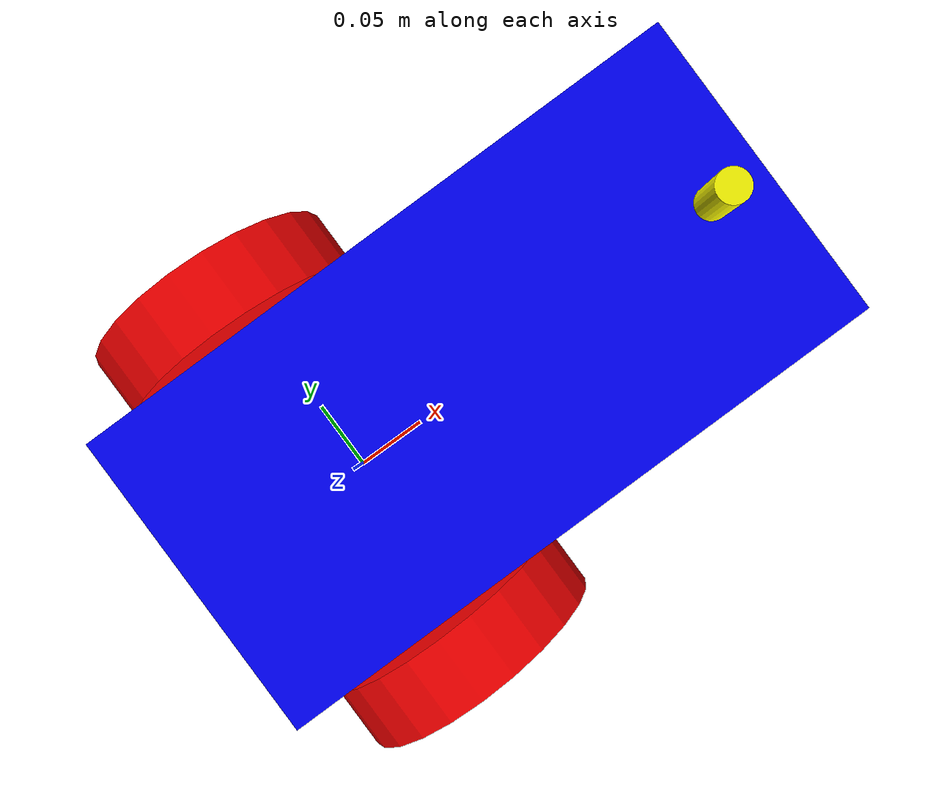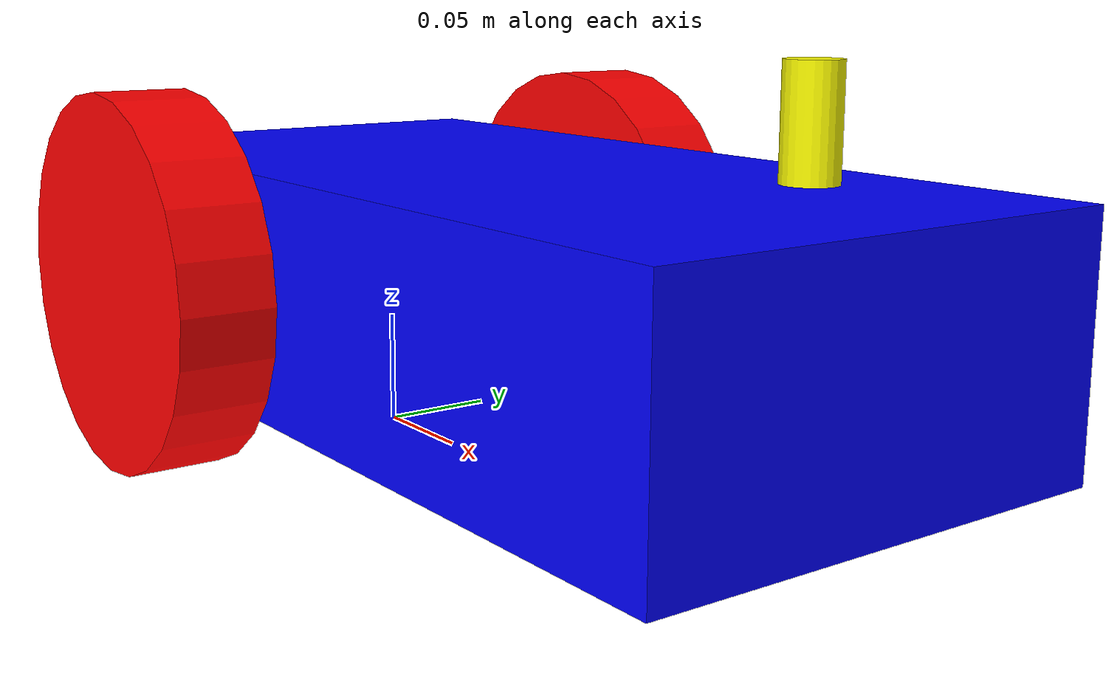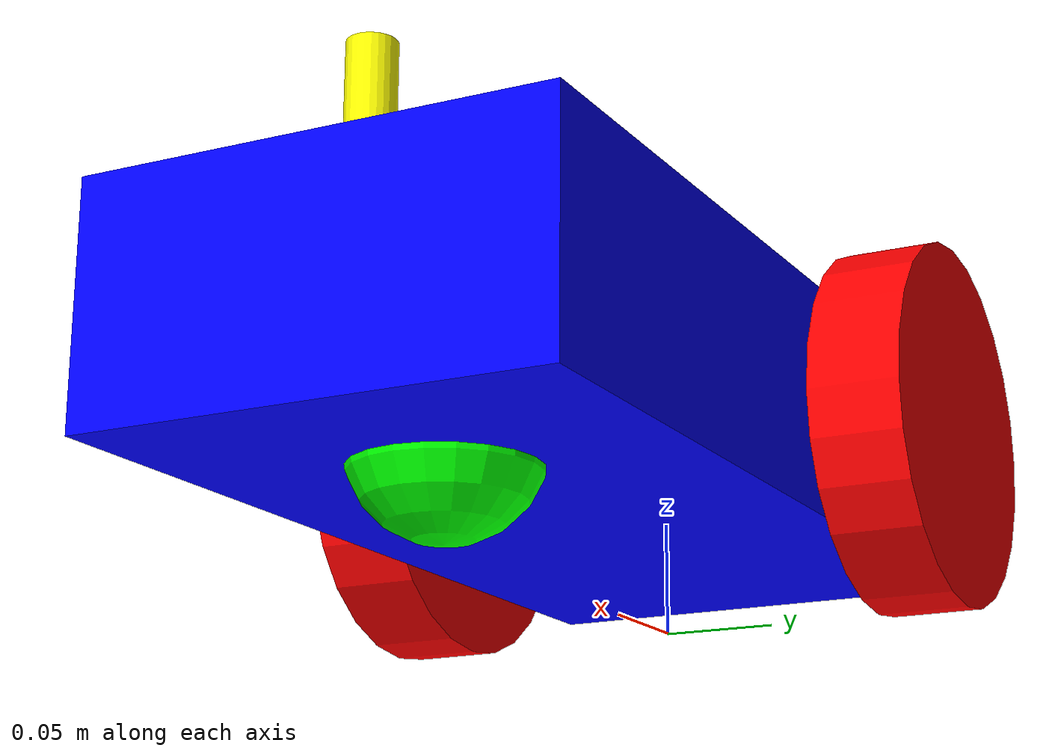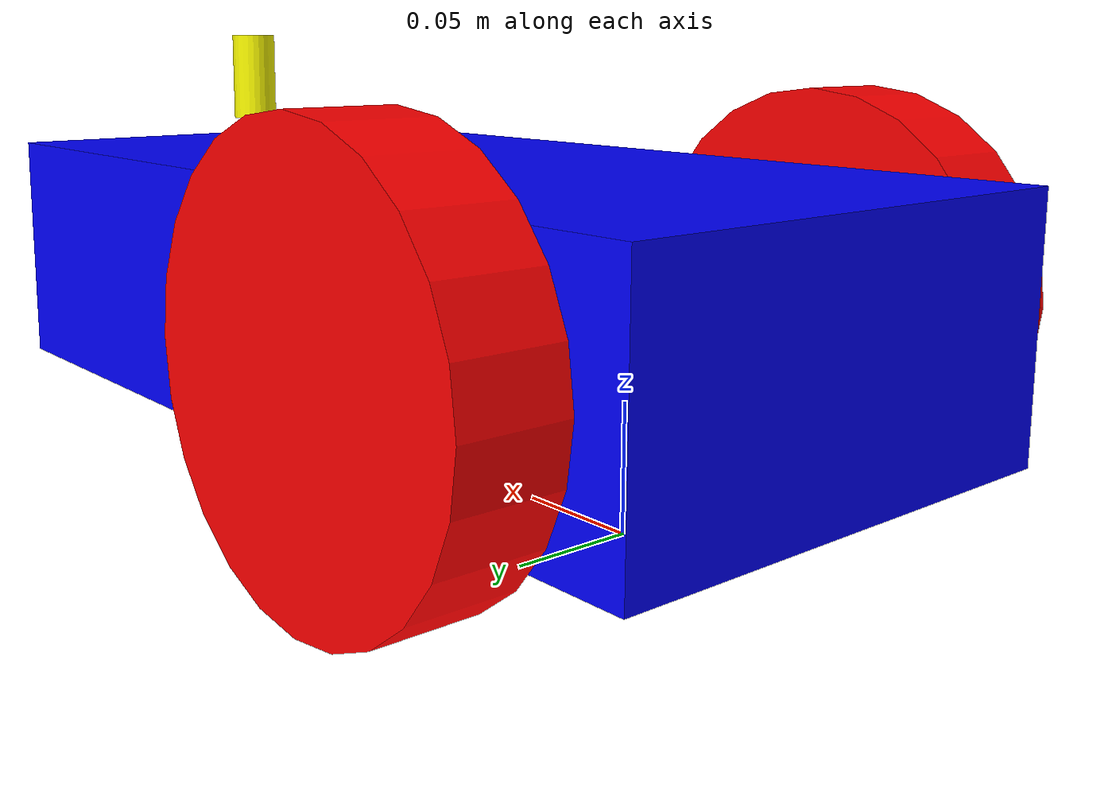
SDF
<?xml version="1.0" ?>
<sdf version="1.10">
   <model name='vehicle_blue' canonical_link='base_link'>
       <link name='base_link'>
           <pose relative_to='__model__'>0.1 0 0.08 0 0 0</pose>
           <inertial>
               <mass>2.0</mass>
               <inertia>
                   <ixx>0.008333</ixx>
                   <ixy>0</ixy>
                   <ixz>0</ixz>
                   <iyy>0.028333</iyy>
                   <iyz>0</iyz>
                   <izz>0.033333</izz>
               </inertia>
           </inertial>
           <visual name='visual'>
               <geometry>
                   <box>
                       <size>0.4 0.2 0.1</size>
                   </box>
               </geometry>
               <material>
                   <ambient>0.0 0.0 1.0 1</ambient>
                   <diffuse>0.0 0.0 1.0 1</diffuse>
                   <specular>0.0 0.0 1.0 1</specular>
               </material>
           </visual>
           <collision name='collision'>
               <geometry>
                   <box>
                       <size>0.4 0.2 0.1</size>
                   </box>
               </geometry>
           </collision>
       </link>
       <link name='left_wheel'>
           <pose relative_to="base_link">-0.1 0.12 0 -1.5707 0 0</pose>
           <inertial>
               <mass>3.0</mass>
               <inertia>
                   <ixx>0.0052</ixx>
                   <ixy>0</ixy>
                   <ixz>0</ixz>
                   <iyy>0.0052</iyy>
                   <iyz>0</iyz>
                   <izz>0.0096</izz>
               </inertia>
           </inertial>
           <visual name='visual'>
               <geometry>
                   <cylinder>
                       <radius>0.08</radius>
                       <length>0.04</length>
                   </cylinder>
               </geometry>
               <material>
                   <ambient>1.0 0.0 0.0 1</ambient>
                   <diffuse>1.0 0.0 0.0 1</diffuse>
                   <specular>1.0 0.0 0.0 1</specular>
               </material>
           </visual>
           <collision name='collision'>
               <geometry>
                   <cylinder>
                       <radius>0.08</radius>
                       <length>0.04</length>
                   </cylinder>
               </geometry>
               <surface>
                   <friction>
                       <ode>
                           <mu>1.0</mu>
                           <mu2>1.0</mu2>
                           <slip1>0.0</slip1>
                           <slip2>0.0</slip2>
                       </ode>
                   </friction>
               </surface>
           </collision>
       </link>
       <link name='right_wheel'>
           <pose relative_to="base_link">-0.1 -0.12 0 -1.5707 0 0</pose>
           <inertial>
               <mass>3.0</mass>
               <inertia>
                   <ixx>0.0052</ixx>
                   <ixy>0</ixy>
                   <ixz>0</ixz>
                   <iyy>0.0052</iyy>
                   <iyz>0</iyz>
                   <izz>0.0096</izz>
               </inertia>
           </inertial>
           <visual name='visual'>
               <geometry>
                   <cylinder>
                       <radius>0.08</radius>
                       <length>0.04</length>
                   </cylinder>
               </geometry>
               <material>
                   <ambient>1.0 0.0 0.0 1</ambient>
                   <diffuse>1.0 0.0 0.0 1</diffuse>
                   <specular>1.0 0.0 0.0 1</specular>
               </material>
           </visual>
           <collision name='collision'>
               <geometry>
                   <cylinder>
                       <radius>0.08</radius>
                       <length>0.04</length>
                   </cylinder>
               </geometry>
               <surface>
                   <friction>
                       <ode>
                           <mu>1.0</mu>
                           <mu2>1.0</mu2>
                           <slip1>0.0</slip1>
                           <slip2>0.0</slip2>
                       </ode>
                   </friction>
               </surface>
           </collision>
       </link>
       <frame name="caster_frame" attached_to='base_link'>
           <pose>0.8 0 -0.2 0 0 0</pose>
       </frame>
       <link name='caster'>
           <pose relative_to='base_link'>0.1 0 -0.04 0 0 0</pose>
           <inertial>
               <mass>0.5</mass>
               <inertia>
                   <ixx>0.00008</ixx>
                   <ixy>0</ixy>
                   <ixz>0</ixz>
                   <iyy>0.00008</iyy>
                   <iyz>0</iyz>
                   <izz>0.00008</izz>
               </inertia>
           </inertial>
           <visual name='visual'>
               <geometry>
                   <sphere>
                       <radius>0.04</radius>
                   </sphere>
               </geometry>
               <material>
                   <ambient>0.0 1 0.0 1</ambient>
                   <diffuse>0.0 1 0.0 1</diffuse>
                   <specular>0.0 1 0.0 1</specular>
               </material>
           </visual>
           <collision name='collision'>
               <geometry>
                   <sphere>
                       <radius>0.04</radius>
                   </sphere>
               </geometry>
               <surface>
                   <friction>
                       <ode>
                           <mu>0.001</mu>
                           <mu2>0.001</mu2>
                           <slip1>1.0</slip1>
                           <slip2>1.0</slip2>
                       </ode>
                   </friction>
               </surface>
           </collision>
       </link>

       <link name='lidar'>
           <pose relative_to="base_link">0.16 0 0.08 0 0 0</pose>
           <inertial>
               <mass>0.1</mass>
               <inertia>
                   <ixx>0.0000027</ixx>
                   <ixy>0</ixy>
                   <ixz>0</ixz>
                   <iyy>0.0000027</iyy>
                   <iyz>0</iyz>
                   <izz>0.0000027</izz>
               </inertia>
           </inertial>
           <visual name='visual'>
               <geometry>
                   <cylinder>
                       <radius>0.01</radius>
                       <length>0.04</length>
                   </cylinder>
               </geometry>
               <material>
                   <ambient>1.0 1.0 0.0 1</ambient>
                   <diffuse>1.0 1.0 0.0 1</diffuse>
                   <specular>1.0 1.0 0.0 1</specular>
               </material>
           </visual>
           <collision name='collision'>
               <geometry>
                   <cylinder>
                       <radius>0.01</radius>
                       <length>0.04</length>
                   </cylinder>
               </geometry>
           </collision>
           <sensor name='lidar_sensor' type='gpu_lidar'>
               <pose>0 0 0 0 0 0</pose>
               <topic>/lidar</topic>
               <update_rate>10</update_rate>
               <frame_id>vehicle_blue/lidar</frame_id>
               <lidar>
                   <scan>
                       <horizontal>
                           <samples>36</samples>
                           <resolution>1</resolution>
                           <min_angle>-3.14159</min_angle>
                           <max_angle>3.14159</max_angle>
                       </horizontal>
                   </scan>
                   <range>
                       <min>0.1</min>
                       <max>30.0</max>
                       <resolution>0.01</resolution>
                   </range>
                   <noise>
                       <type>gaussian</type>
                       <mean>0.0</mean>
                       <stddev>0.01</stddev>
                   </noise>
               </lidar>
               <always_on>1</always_on>
               <visualize>true</visualize>
           </sensor>
       </link>
       <joint name='left_wheel_joint' type='revolute'>
           <pose relative_to='left_wheel'/>
           <parent>base_link</parent>
           <child>left_wheel</child>
           <axis>
               <xyz expressed_in='__model__'>0 1 0</xyz>
               <limit>
                   <lower>-1.79769e+308</lower>
                   <upper>1.79769e+308</upper>
               </limit>
           </axis>
       </joint>
       <joint name='right_wheel_joint' type='revolute'>
           <pose relative_to='right_wheel'/>
           <parent>base_link</parent>
           <child>right_wheel</child>
           <axis>
               <xyz expressed_in='__model__'>0 1 0</xyz>
               <limit>
                   <lower>-1.79769e+308</lower>
                   <upper>1.79769e+308</upper>
               </limit>
           </axis>
       </joint>
       <joint name='caster_wheel' type='ball'>
           <parent>base_link</parent>
           <child>caster</child>
       </joint>

       <joint name='lidar_joint' type='fixed'>
           <parent>base_link</parent>
           <child>lidar</child>
       </joint>

              <!-- Plugins inside the model -->
       <plugin filename="gz-sim-diff-drive-system" name="gz::sim::systems::DiffDrive">
           <left_joint>left_wheel_joint</left_joint>
           <right_joint>right_wheel_joint</right_joint>
           <wheel_separation>0.24</wheel_separation>
           <wheel_radius>0.08</wheel_radius>
           <odom_publish_frequency>30</odom_publish_frequency>
           <max_wheel_torque>12.0</max_wheel_torque>
           <max_wheel_acceleration>6.0</max_wheel_acceleration>
           <topic>/cmd_vel</topic>
           <odom_topic>/odom</odom_topic>
           <frame_id>odom</frame_id>
           <child_frame_id>base_link</child_frame_id>
           <tf_topic>/tf</tf_topic>
           <publish_odom_tf>true</publish_odom_tf>

       </plugin>

       <plugin filename="gz-sim-joint-state-publisher-system" name="gz::sim::systems::JointStatePublisher">
           <topic>/joint_states</topic>
       </plugin>

       <plugin filename="gz-sim-pose-publisher-system" name="gz::sim::systems::PosePublisher">
           <publish_link_pose>true</publish_link_pose>
           <publish_sensor_pose>false</publish_sensor_pose>
           <publish_collision_pose>false</publish_collision_pose>
           <publish_visual_pose>false</publish_visual_pose>
           <publish_nested_model_pose>true</publish_nested_model_pose>
           <use_pose_vector_msg>true</use_pose_vector_msg>
           <static_publisher>false</static_publisher>
           <update_frequency>30</update_frequency>
           <topic>/model/vehicle_blue/pose</topic>
       </plugin>

       <plugin filename="gz-sim-sensors-system" name="gz::sim::systems::Sensors">
           <render_engine>ogre2</render_engine>
       </plugin>
   </model>
</sdf>
